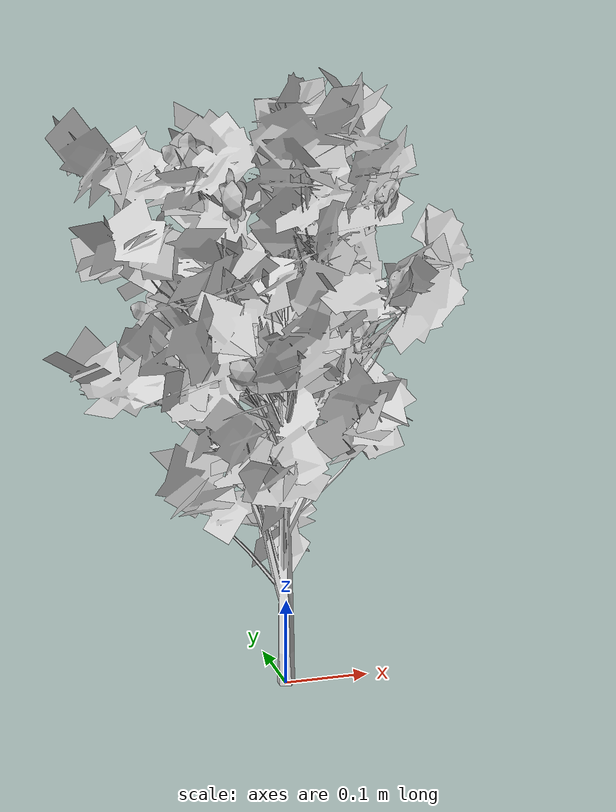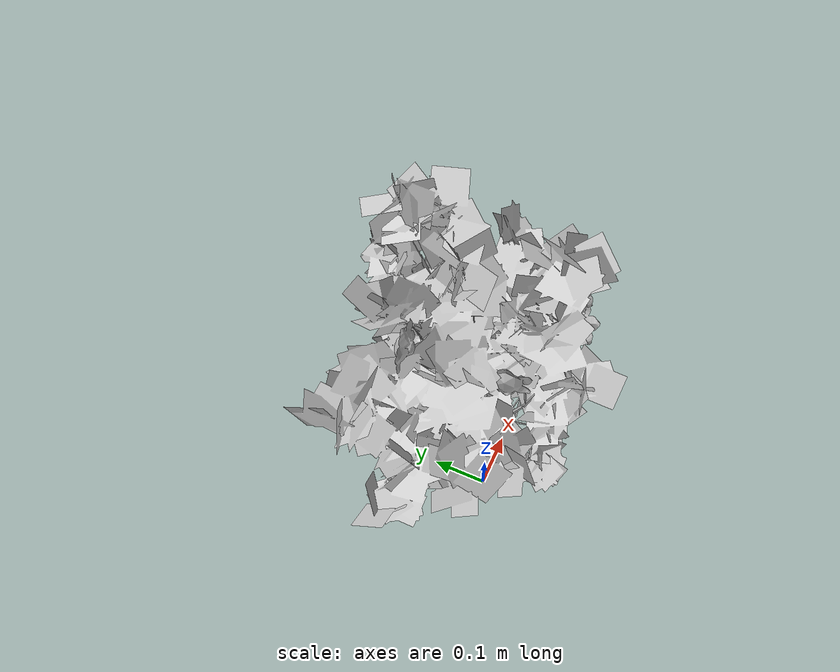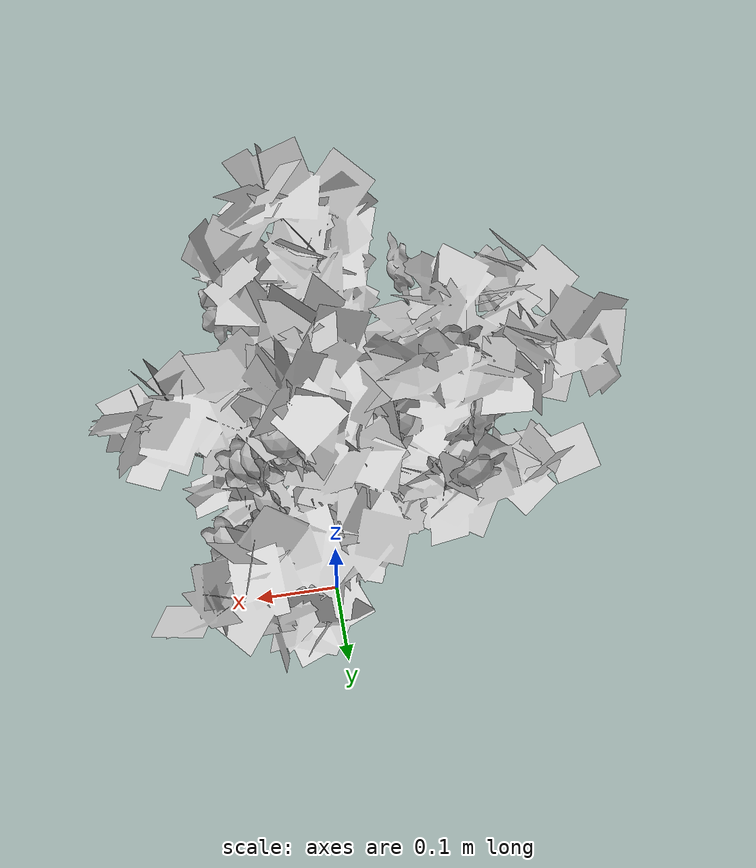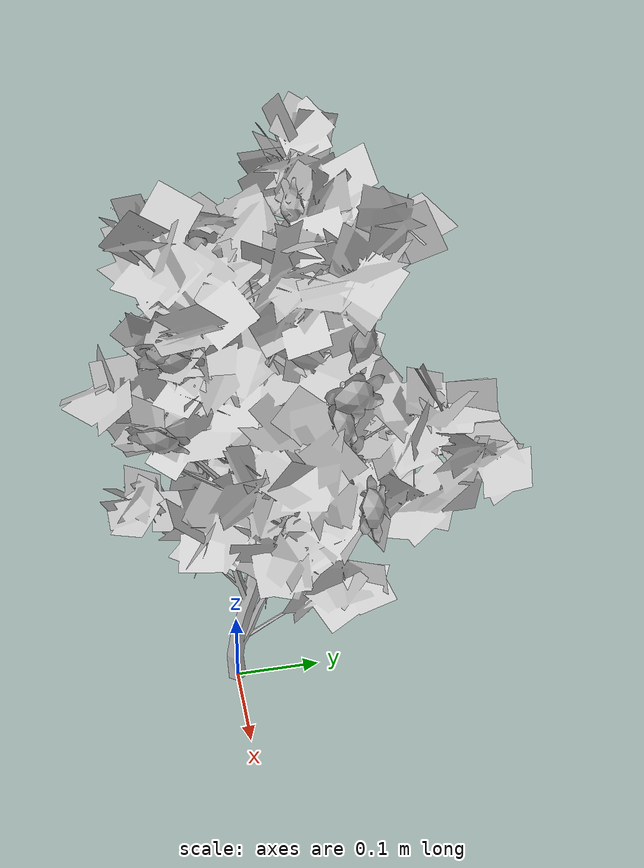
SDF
<?xml version="1.0" ?>
<sdf version="1.6">
  <model name="tree-flowers">
    <!--Skew-Seed:2147483648-->
    <static>true</static>
    <link name="link"/>
    <include>
      <uri>model://tree-mesh</uri>
      <pose>0 0 0 0 0 0</pose>
    </include>
    <joint name="tree_joint" type="fixed">
      <child>tree-mesh::link</child>
      <parent>link</parent>
    </joint>
    <include>
      <name>bramble_0</name>
      <uri>model://bramble</uri>
      <pose> -0.05710528536204251 -0.039044373324294626 0.38428793314043874 -3.711683336799007 0.9076584495804945 0.0</pose>
    </include>
    <joint name="flower_joint_0" type="fixed">
      <child>bramble_0::flower_link</child>
      <parent>link</parent>
    </joint>
    <include>
      <name>bramble_1</name>
      <uri>model://bramble</uri>
      <pose> 0.11592661001330634 0.11793045740168479 0.3674932174548289 -0.8888640427593654 0.8849469531190011 0.0</pose>
    </include>
    <joint name="flower_joint_1" type="fixed">
      <child>bramble_1::flower_link</child>
      <parent>link</parent>
    </joint>
    <include>
      <name>bramble_2</name>
      <uri>model://bramble</uri>
      <pose> 0.08202384174650548 -0.06613563794999597 0.5703364981441099 0.043274772535236594 1.8977402207391258 0.0</pose>
    </include>
    <joint name="flower_joint_2" type="fixed">
      <child>bramble_2::flower_link</child>
      <parent>link</parent>
    </joint>
    <include>
      <name>bramble_3</name>
      <uri>model://bramble</uri>
      <pose> 0.09088898763189246 0.0885270751232168 0.4606084188671056 -1.0221689072424613 0.8230858558187618 0.0</pose>
    </include>
    <joint name="flower_joint_3" type="fixed">
      <child>bramble_3::flower_link</child>
      <parent>link</parent>
    </joint>
    <include>
      <name>bramble_4</name>
      <uri>model://bramble</uri>
      <pose> 0.09476989704256805 -0.0796655027718075 0.4816248408724517 0.3386746360030575 2.0954987942691856 0.0</pose>
    </include>
    <joint name="flower_joint_4" type="fixed">
      <child>bramble_4::flower_link</child>
      <parent>link</parent>
    </joint>
    <include>
      <name>bramble_5</name>
      <uri>model://bramble</uri>
      <pose> 0.08182779003352711 0.10572293809456629 0.49238601517920255 -0.2079538037221509 1.6225644284452136 0.0</pose>
    </include>
    <joint name="flower_joint_5" type="fixed">
      <child>bramble_5::flower_link</child>
      <parent>link</parent>
    </joint>
    <include>
      <name>bramble_6</name>
      <uri>model://bramble</uri>
      <pose> 0.08424472836088634 -0.06050857669205692 0.5643460661818906 0.3347151264602958 2.155110632013607 0.0</pose>
    </include>
    <joint name="flower_joint_6" type="fixed">
      <child>bramble_6::flower_link</child>
      <parent>link</parent>
    </joint>
    <include>
      <name>bramble_7</name>
      <uri>model://bramble</uri>
      <pose> -0.12230881987777079 0.09978983619788351 0.4192130954606486 -1.824541160305113 1.4237046959098256 0.0</pose>
    </include>
    <joint name="flower_joint_7" type="fixed">
      <child>bramble_7::flower_link</child>
      <parent>link</parent>
    </joint>
    <include>
      <name>bramble_8</name>
      <uri>model://bramble</uri>
      <pose> 0.07285440951006994 0.09607735676088129 0.40058481087401515 -0.5220195468862241 1.5158242496739862 0.0</pose>
    </include>
    <joint name="flower_joint_8" type="fixed">
      <child>bramble_8::flower_link</child>
      <parent>link</parent>
    </joint>
    <include>
      <name>bramble_9</name>
      <uri>model://bramble</uri>
      <pose> -0.11918402454863629 0.0871480965545703 0.4816419600269042 -2.031219023710424 0.8224195064665774 0.0</pose>
    </include>
    <joint name="flower_joint_9" type="fixed">
      <child>bramble_9::flower_link</child>
      <parent>link</parent>
    </joint>
    <include>
      <name>bramble_10</name>
      <uri>model://bramble</uri>
      <pose> -0.0587728734639302 0.05567844949554805 0.45881066288961764 -2.59229669440522 1.9625537323360065 0.0</pose>
    </include>
    <joint name="flower_joint_10" type="fixed">
      <child>bramble_10::flower_link</child>
      <parent>link</parent>
    </joint>
    <include>
      <name>bramble_11</name>
      <uri>model://bramble</uri>
      <pose> 0.08858119360600783 0.051420861081000795 0.4030555515755277 -0.16971001671375419 1.880831685225885 0.0</pose>
    </include>
    <joint name="flower_joint_11" type="fixed">
      <child>bramble_11::flower_link</child>
      <parent>link</parent>
    </joint>
    <include>
      <name>bramble_12</name>
      <uri>model://bramble</uri>
      <pose> 0.0569886543720451 0.09268137737129921 0.47978396819099733 -0.9249562676827908 2.12474700864703 0.0</pose>
    </include>
    <joint name="flower_joint_12" type="fixed">
      <child>bramble_12::flower_link</child>
      <parent>link</parent>
    </joint>
    <include>
      <name>bramble_13</name>
      <uri>model://bramble</uri>
      <pose> -0.12087469520385417 0.09162200453581525 0.5069912637665703 -2.546392039499651 1.889292364147104 0.0</pose>
    </include>
    <joint name="flower_joint_13" type="fixed">
      <child>bramble_13::flower_link</child>
      <parent>link</parent>
    </joint>
    <include>
      <name>bramble_14</name>
      <uri>model://bramble</uri>
      <pose> 0.061296183948938904 0.113209561616405 0.5374968376199128 -0.9222033940313165 1.426593068764153 0.0</pose>
    </include>
    <joint name="flower_joint_14" type="fixed">
      <child>bramble_14::flower_link</child>
      <parent>link</parent>
    </joint>
    <include>
      <name>bramble_15</name>
      <uri>model://bramble</uri>
      <pose> -0.06211194672216286 -0.03634510596600034 0.5643876870973115 -3.361378863829218 1.528620810864247 0.0</pose>
    </include>
    <joint name="flower_joint_15" type="fixed">
      <child>bramble_15::flower_link</child>
      <parent>link</parent>
    </joint>
    <include>
      <name>bramble_16</name>
      <uri>model://bramble</uri>
      <pose> 0.07247680021195455 0.09560402924175793 0.3624598871591723 -1.4124847676010783 1.0807774843175486 0.0</pose>
    </include>
    <joint name="flower_joint_16" type="fixed">
      <child>bramble_16::flower_link</child>
      <parent>link</parent>
    </joint>
    <include>
      <name>bramble_17</name>
      <uri>model://bramble</uri>
      <pose> -0.09080770620520531 0.07283685298940556 0.5956343916976286 -1.7325657204666 1.5194441211769507 0.0</pose>
    </include>
    <joint name="flower_joint_17" type="fixed">
      <child>bramble_17::flower_link</child>
      <parent>link</parent>
    </joint>
  </model>
</sdf>

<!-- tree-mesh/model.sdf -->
<sdf version="1.6">
  <model name="tree-mesh">
    <static>true</static>
    <link name="link">

      <collision name="collision">
        <geometry>
          <mesh>
            <uri>model://tree-mesh/meshes/new_tree.dae</uri>
            <scale>0.0625 0.0625 0.0625</scale>
          </mesh>
        </geometry>
      </collision>

      <!-- simplified collision for sake of speed since leaves shouldn't be blocking anyway -->

      <visual name="leaves">
        <geometry>
          <mesh>
            <uri>model://tree-mesh/meshes/leaves.dae</uri>
            <scale>0.0325 0.0325 0.0325</scale>
          </mesh>
        </geometry>
        <material>
          <script>
            <uri>model://tree-mesh/materials/scripts/</uri>
            <uri>model://tree-mesh/materials/textures/</uri>
            <name>NewTree/Branch</name>
          </script>
        </material>
      </visual>
      <visual name="bark">
        <geometry>
          <mesh>
            <uri>model://tree-mesh/meshes/bark.dae</uri>
            <scale>0.0325 0.0325 0.0325</scale>
          </mesh>
        </geometry>
        <material>
          <script>
            <uri>model://tree-mesh/materials/scripts/</uri>
            <uri>model://tree-mesh/materials/textures/</uri>
            <name>NewTree/Bark</name>
          </script>
        </material>
      </visual>
    </link>
  </model>
</sdf>

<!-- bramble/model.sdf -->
<sdf version="1.6">
  <model name="bramble-flower">
    <static>true</static>
    <link name="flower_link">
      <collision name="body_collision">
        <geometry>
          <mesh>
            <uri>model://bramble/meshes/bramble.dae</uri>
            <scale>0.4 0.4 0.4</scale>
          </mesh>
        </geometry>
      </collision>
      <visual name="petals">
        <geometry>
          <mesh>
            <uri>model://bramble/meshes/bramble.dae</uri>
            <scale>0.4 0.4 0.4</scale>
            <submesh>
              <name>petal</name>
            </submesh>
          </mesh>
        </geometry>
        <material>
          <script>
            <uri>model://bramble/materials/scripts/</uri>
            <uri>model://bramble/materials/textures/</uri>
            <name>Bramble/Petal</name>
          </script>
        </material>
      </visual>
      <visual name="carpel">
        <geometry>
          <mesh>
            <uri>model://bramble/meshes/bramble.dae</uri>
            <scale>0.4 0.4 0.4</scale>
            <submesh>
              <name>carpel</name>
            </submesh>
          </mesh>
        </geometry>
        <material>
          <script>
            <uri>model://bramble/materials/scripts/</uri>
            <uri>model://bramble/materials/textures/</uri>
            <name>Bramble/Carpel</name>
          </script>
        </material>
      </visual>
      <visual name="stamen">
        <geometry>
          <mesh>
            <uri>model://bramble/meshes/bramble.dae</uri>
            <scale>0.4 0.4 0.4</scale>
            <submesh>
              <name>stamen</name>
            </submesh>
          </mesh>
        </geometry>
        <material>
          <script>
            <uri>model://bramble/materials/scripts/</uri>
            <uri>model://bramble/materials/textures/</uri>
            <name>Bramble/Stamen</name>
          </script>
        </material>
      </visual>
    </link>
  </model>
</sdf>
